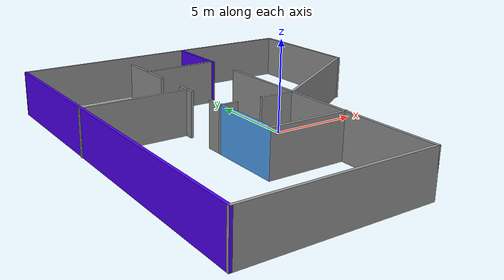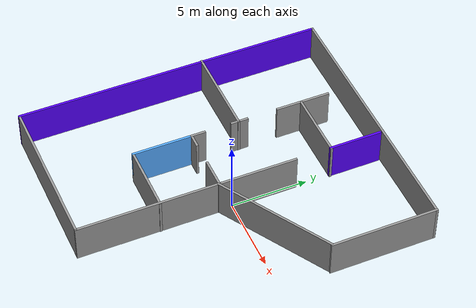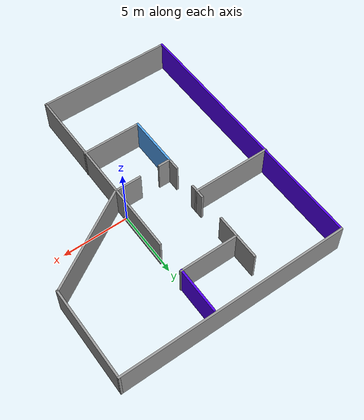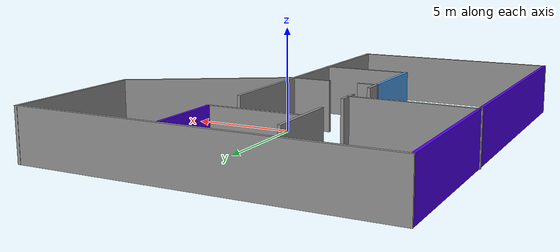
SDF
<?xml version='1.0'?>
<sdf version='1.6'>
  <model name='mid_building'>
    <pose frame=''>-1.4738 0.054801 0 0 -0 0</pose>
    <link name='Wall_2'>
      <collision name='Wall_2_Collision'>
        <geometry>
          <box>
            <size>20.15 0.15 2.5</size>
          </box>
        </geometry>
        <pose frame=''>0 0 1.25 0 -0 0</pose>
      </collision>
      <visual name='Wall_2_Visual'>
        <pose frame=''>0 0 1.25 0 -0 0</pose>
        <geometry>
          <box>
            <size>20.15 0.15 2.5</size>
          </box>
        </geometry>
        <material>
          <script>
            <uri>file://media/materials/scripts/gazebo.material</uri>
            <name>Gazebo/Grey</name>
          </script>
          <ambient>0.333333 0 1 1</ambient>
        </material>
        <meta>
          <layer>0</layer>
        </meta>
      </visual>
      <pose frame=''>-8.5262 -0.054801 0 0 -0 1.5708</pose>
    </link>
    <link name='Wall_4'>
      <collision name='Wall_4_Collision'>
        <geometry>
          <box>
            <size>10.25 0.15 2.5</size>
          </box>
        </geometry>
        <pose frame=''>0 0 1.25 0 -0 0</pose>
      </collision>
      <visual name='Wall_4_Visual'>
        <pose frame=''>0 0 1.25 0 -0 0</pose>
        <geometry>
          <box>
            <size>10.25 0.15 2.5</size>
          </box>
        </geometry>
        <material>
          <script>
            <uri>file://media/materials/scripts/gazebo.material</uri>
            <name>Gazebo/Grey</name>
          </script>
          <ambient>1 1 1 1</ambient>
        </material>
        <meta>
          <layer>0</layer>
        </meta>
      </visual>
      <pose frame=''>-3.4762 -10.0548 0 0 -0 0</pose>
    </link>
    <link name='Wall_45'>
      <collision name='Wall_45_Collision'>
        <geometry>
          <box>
            <size>9.25 0.15 2.5</size>
          </box>
        </geometry>
        <pose frame=''>0 0 1.25 0 -0 0</pose>
      </collision>
      <visual name='Wall_45_Visual'>
        <pose frame=''>0 0 1.25 0 -0 0</pose>
        <geometry>
          <box>
            <size>9.25 0.15 2.5</size>
          </box>
        </geometry>
        <material>
          <script>
            <uri>file://media/materials/scripts/gazebo.material</uri>
            <name>Gazebo/Grey</name>
          </script>
          <ambient>1 1 1 1</ambient>
        </material>
        <meta>
          <layer>0</layer>
        </meta>
      </visual>
      <pose frame=''>1.5738 -5.5048 0 0 -0 1.5708</pose>
    </link>
    <link name='Wall_46'>
      <collision name='Wall_46_Collision'>
        <geometry>
          <box>
            <size>8.22273 0.15 2.5</size>
          </box>
        </geometry>
        <pose frame=''>0 0 1.25 0 -0 0</pose>
      </collision>
      <visual name='Wall_46_Visual'>
        <pose frame=''>0 0 1.25 0 -0 0</pose>
        <geometry>
          <box>
            <size>8.22273 0.15 2.5</size>
          </box>
        </geometry>
        <material>
          <script>
            <uri>file://media/materials/scripts/gazebo.material</uri>
            <name>Gazebo/Grey</name>
          </script>
          <ambient>1 1 1 1</ambient>
        </material>
        <meta>
          <layer>0</layer>
        </meta>
      </visual>
      <pose frame=''>5.03309 1.125 0 0 -0 0.541318</pose>
    </link>
    <link name='Wall_47'>
      <collision name='Wall_47_Collision'>
        <geometry>
          <box>
            <size>7 0.15 2.5</size>
          </box>
        </geometry>
        <pose frame=''>0 0 1.25 0 -0 0</pose>
      </collision>
      <visual name='Wall_47_Visual'>
        <pose frame=''>0 0 1.25 0 -0 0</pose>
        <geometry>
          <box>
            <size>7 0.15 2.5</size>
          </box>
        </geometry>
        <material>
          <script>
            <uri>file://media/materials/scripts/gazebo.material</uri>
            <name>Gazebo/Grey</name>
          </script>
          <ambient>1 1 1 1</ambient>
        </material>
        <meta>
          <layer>0</layer>
        </meta>
      </visual>
      <pose frame=''>8.57218 6.6298 0 0 -0 1.5708</pose>
    </link>
    <link name='Wall_49'>
      <collision name='Wall_49_Collision'>
        <geometry>
          <box>
            <size>2 0.15 2.5</size>
          </box>
        </geometry>
        <pose frame=''>0 0 1.25 0 -0 0</pose>
      </collision>
      <visual name='Wall_49_Visual'>
        <pose frame=''>0 0 1.25 0 -0 0</pose>
        <geometry>
          <box>
            <size>2 0.15 2.5</size>
          </box>
        </geometry>
        <material>
          <script>
            <uri>file://media/materials/scripts/gazebo.material</uri>
            <name>Gazebo/Grey</name>
          </script>
          <ambient>1 1 1 1</ambient>
        </material>
        <meta>
          <layer>0</layer>
        </meta>
      </visual>
      <pose frame=''>0.63558 -0.905922 0 0 -0 3.14159</pose>
    </link>
    <link name='Wall_51'>
      <collision name='Wall_51_Collision'>
        <geometry>
          <box>
            <size>1 0.15 2.5</size>
          </box>
        </geometry>
        <pose frame=''>0 0 1.25 0 -0 0</pose>
      </collision>
      <visual name='Wall_51_Visual'>
        <pose frame=''>0 0 1.25 0 -0 0</pose>
        <geometry>
          <box>
            <size>1 0.15 2.5</size>
          </box>
        </geometry>
        <material>
          <script>
            <uri>file://media/materials/scripts/gazebo.material</uri>
            <name>Gazebo/Grey</name>
          </script>
          <ambient>1 1 1 1</ambient>
        </material>
        <meta>
          <layer>0</layer>
        </meta>
      </visual>
      <pose frame=''>-2.31442 -0.905922 0 0 -0 3.14159</pose>
    </link>
    <link name='Wall_52'>
      <collision name='Wall_52_Collision'>
        <geometry>
          <box>
            <size>1 0.15 2.5</size>
          </box>
        </geometry>
        <pose frame=''>0 0 1.25 0 -0 0</pose>
      </collision>
      <visual name='Wall_52_Visual'>
        <pose frame=''>0 0 1.25 0 -0 0</pose>
        <geometry>
          <box>
            <size>1 0.15 2.5</size>
          </box>
        </geometry>
        <material>
          <script>
            <uri>file://media/materials/scripts/gazebo.material</uri>
            <name>Gazebo/Grey</name>
          </script>
          <ambient>1 1 1 1</ambient>
        </material>
        <meta>
          <layer>0</layer>
        </meta>
      </visual>
      <pose frame=''>-2.73942 -0.480922 0 0 -0 1.5708</pose>
    </link>
    <link name='Wall_54'>
      <collision name='Wall_54_Collision'>
        <geometry>
          <box>
            <size>1.1596 0.15 2.5</size>
          </box>
        </geometry>
        <pose frame=''>0 0 1.25 0 -0 0</pose>
      </collision>
      <visual name='Wall_54_Visual'>
        <pose frame=''>0 0 1.25 0 -0 0</pose>
        <geometry>
          <box>
            <size>1.1596 0.15 2.5</size>
          </box>
        </geometry>
        <material>
          <script>
            <uri>file://media/materials/scripts/gazebo.material</uri>
            <name>Gazebo/Grey</name>
          </script>
          <ambient>1 1 1 1</ambient>
        </material>
        <meta>
          <layer>0</layer>
        </meta>
      </visual>
      <pose frame=''>-2.73942 2.29888 0 0 -0 1.5708</pose>
    </link>
    <link name='Wall_59'>
      <collision name='Wall_59_Collision'>
        <geometry>
          <box>
            <size>6 0.15 2.5</size>
          </box>
        </geometry>
        <pose frame=''>0 0 1.25 0 -0 0</pose>
      </collision>
      <visual name='Wall_59_Visual'>
        <pose frame=''>0 0 1.25 0 -0 0</pose>
        <geometry>
          <box>
            <size>6 0.15 2.5</size>
          </box>
        </geometry>
        <material>
          <script>
            <uri>file://media/materials/scripts/gazebo.material</uri>
            <name>Gazebo/Grey</name>
          </script>
          <ambient>1 1 1 1</ambient>
        </material>
        <meta>
          <layer>0</layer>
        </meta>
      </visual>
      <pose frame=''>-5.64881 2.23852 0 0 -0 3.14159</pose>
    </link>
    <link name='Wall_61'>
      <collision name='Wall_61_Collision'>
        <geometry>
          <box>
            <size>4 0.15 2.5</size>
          </box>
        </geometry>
        <pose frame=''>0 0 1.25 0 -0 0</pose>
      </collision>
      <visual name='Wall_61_Visual'>
        <pose frame=''>0 0 1.25 0 -0 0</pose>
        <geometry>
          <box>
            <size>4 0.15 2.5</size>
          </box>
        </geometry>
        <material>
          <script>
            <uri>file://media/materials/scripts/gazebo.material</uri>
            <name>Gazebo/Grey</name>
          </script>
          <ambient>0.333333 0.666667 1 1</ambient>
        </material>
        <meta>
          <layer>0</layer>
        </meta>
      </visual>
      <pose frame=''>-2.73942 -2.83092 0 0 0 -1.5708</pose>
    </link>
    <link name='Wall_62'>
      <collision name='Wall_62_Collision'>
        <geometry>
          <box>
            <size>4.5 0.15 2.5</size>
          </box>
        </geometry>
        <pose frame=''>0 0 1.25 0 -0 0</pose>
      </collision>
      <visual name='Wall_62_Visual'>
        <pose frame=''>0 0 1.25 0 -0 0</pose>
        <geometry>
          <box>
            <size>4.5 0.15 2.5</size>
          </box>
        </geometry>
        <material>
          <script>
            <uri>file://media/materials/scripts/gazebo.material</uri>
            <name>Gazebo/Grey</name>
          </script>
          <ambient>1 1 1 1</ambient>
        </material>
        <meta>
          <layer>0</layer>
        </meta>
      </visual>
      <pose frame=''>-0.56442 -4.75592 0 0 -0 0</pose>
    </link>
    <link name='Wall_64'>
      <collision name='Wall_64_Collision'>
        <geometry>
          <box>
            <size>5.25 0.15 2.5</size>
          </box>
        </geometry>
        <pose frame=''>0 0 1.25 0 -0 0</pose>
      </collision>
      <visual name='Wall_64_Visual'>
        <pose frame=''>0 0 1.25 0 -0 0</pose>
        <geometry>
          <box>
            <size>5.25 0.15 2.5</size>
          </box>
        </geometry>
        <material>
          <script>
            <uri>file://media/materials/scripts/gazebo.material</uri>
            <name>Gazebo/Grey</name>
          </script>
          <ambient>1 1 1 1</ambient>
        </material>
        <meta>
          <layer>0</layer>
        </meta>
      </visual>
      <pose frame=''>1.5738 1.5952 0 0 -0 1.5708</pose>
    </link>
    <link name='Wall_66'>
      <collision name='Wall_66_Collision'>
        <geometry>
          <box>
            <size>3.5 0.15 2.5</size>
          </box>
        </geometry>
        <pose frame=''>0 0 1.25 0 -0 0</pose>
      </collision>
      <visual name='Wall_66_Visual'>
        <pose frame=''>0 0 1.25 0 -0 0</pose>
        <geometry>
          <box>
            <size>3.5 0.15 2.5</size>
          </box>
        </geometry>
        <material>
          <script>
            <uri>file://media/materials/scripts/gazebo.material</uri>
            <name>Gazebo/Grey</name>
          </script>
          <ambient>0.333333 0 1 1</ambient>
        </material>
        <meta>
          <layer>0</layer>
        </meta>
      </visual>
      <pose frame=''>1.5738 8.1702 0 0 -0 1.5708</pose>
    </link>
    <link name='Wall_68'>
      <collision name='Wall_68_Collision'>
        <geometry>
          <box>
            <size>4.5 0.15 2.5</size>
          </box>
        </geometry>
        <pose frame=''>0 0 1.25 0 -0 0</pose>
      </collision>
      <visual name='Wall_68_Visual'>
        <pose frame=''>0 0 1.25 0 -0 0</pose>
        <geometry>
          <box>
            <size>4.5 0.15 2.5</size>
          </box>
        </geometry>
        <material>
          <script>
            <uri>file://media/materials/scripts/gazebo.material</uri>
            <name>Gazebo/Grey</name>
          </script>
          <ambient>1 1 1 1</ambient>
        </material>
        <meta>
          <layer>0</layer>
        </meta>
      </visual>
      <pose frame=''>-0.548333 6.5069 0 0 -0 3.14159</pose>
    </link>
    <link name='Wall_7'>
      <collision name='Wall_7_Collision'>
        <geometry>
          <box>
            <size>17.25 0.15 2.5</size>
          </box>
        </geometry>
        <pose frame=''>0 0 1.25 0 -0 0</pose>
      </collision>
      <visual name='Wall_7_Visual'>
        <pose frame=''>0 0 1.25 0 -0 0</pose>
        <geometry>
          <box>
            <size>17.25 0.15 2.5</size>
          </box>
        </geometry>
        <material>
          <script>
            <uri>file://media/materials/scripts/gazebo.material</uri>
            <name>Gazebo/Grey</name>
          </script>
          <ambient>1 1 1 1</ambient>
        </material>
        <meta>
          <layer>0</layer>
        </meta>
      </visual>
      <pose frame=''>0.023804 10.0452 0 0 -0 3.14159</pose>
    </link>
    <link name='Wall_72'>
      <collision name='Wall_72_Collision'>
        <geometry>
          <box>
            <size>3.5904 0.15 2.5</size>
          </box>
        </geometry>
        <pose frame=''>0 0 1.25 0 -0 0</pose>
      </collision>
      <visual name='Wall_72_Visual'>
        <pose frame=''>0 0 1.25 0 -0 0</pose>
        <geometry>
          <box>
            <size>3.5904 0.15 2.5</size>
          </box>
        </geometry>
        <material>
          <script>
            <uri>file://media/materials/scripts/gazebo.material</uri>
            <name>Gazebo/Grey</name>
          </script>
          <ambient>1 1 1 1</ambient>
        </material>
        <meta>
          <layer>0</layer>
        </meta>
      </visual>
      <pose frame=''>-2.73942 6.62388 0 0 -0 1.5708</pose>
    </link>
    <static>1</static>
  </model>
</sdf>
